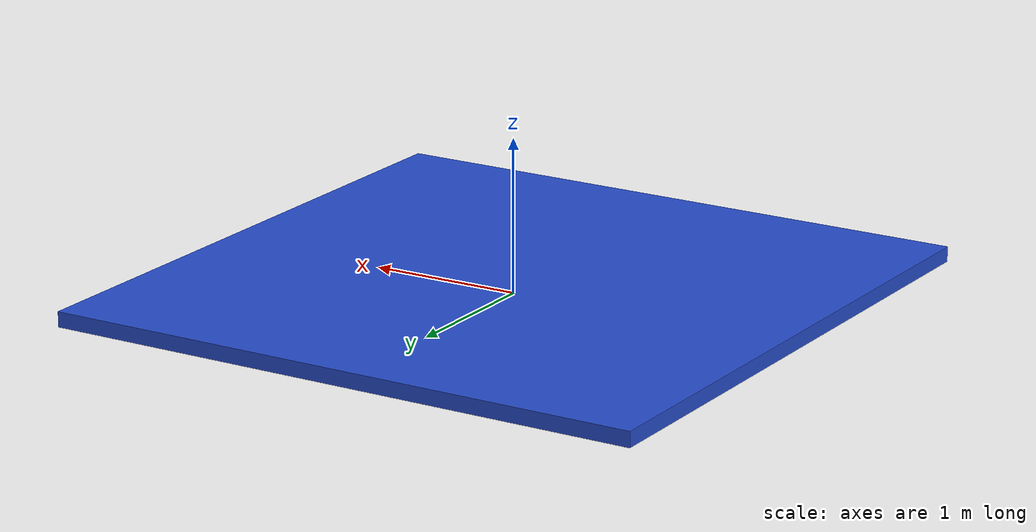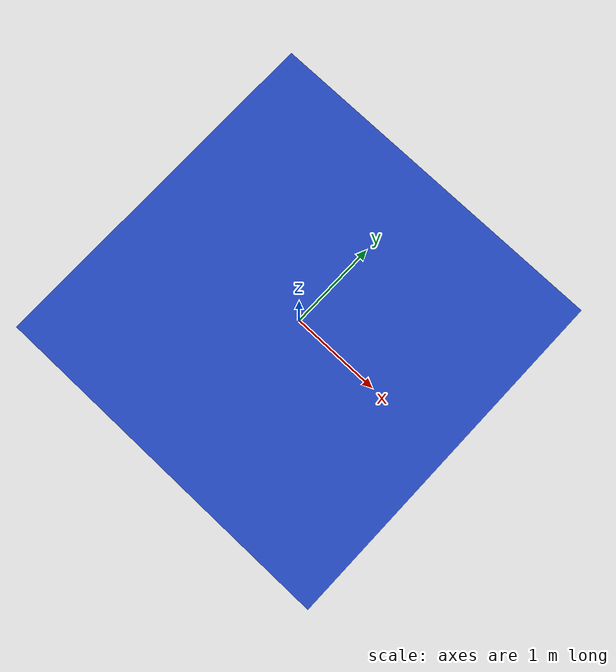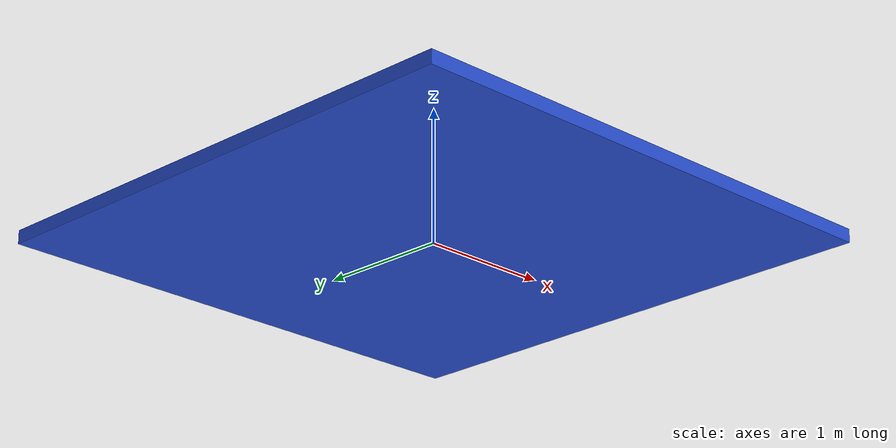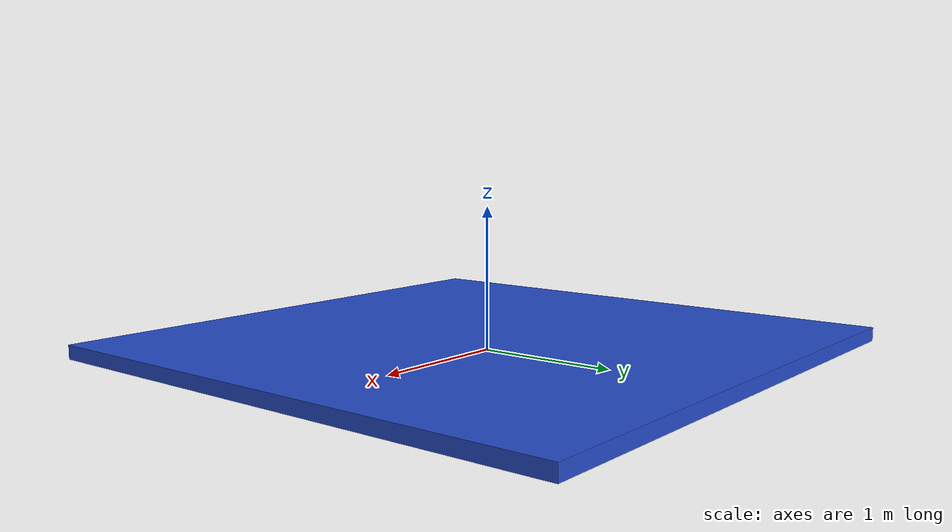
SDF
<?xml version='1.0'?>
<sdf version='1.6'>
  <model name='Slippery_Mat'>
    <link name='link_0'>
      <inertial>
        <mass>1</mass>
        <inertia>
          <ixx>1.334167</ixx>
          <ixy>0</ixy>
          <ixz>0</ixz>
          <iyy>2.666667</iyy>
          <iyz>0</iyz>
          <izz>1.334167</izz>
        </inertia>
      </inertial>
      <pose frame=''>0 0 0.05 0 -0 0</pose>
      <visual name='visual'>
        <pose frame=''>0 0 0 0 -0 0</pose>
        <geometry>
          <box>
            <size>4 4 0.1</size>
          </box>
        </geometry>
        <material>
          <lighting>1</lighting>
          <script>
            <uri>file://media/materials/scripts/gazebo.material</uri>
            <name>Gazebo/Blue</name>
          </script>
          <shader type='pixel'/>
        </material>
        <transparency>0</transparency>
        <cast_shadows>1</cast_shadows>
      </visual>
      <collision name='collision'>
        <laser_retro>0</laser_retro>
        <max_contacts>100</max_contacts>
        <pose frame=''>0 0 0 0 -0 0</pose>
        <geometry>
          <box>
            <size>4 4 0.1</size>
          </box>
        </geometry>
        <surface>
          <friction>
            <ode>
              <mu>0</mu>
              <mu2>0</mu2>
              <fdir1>0 0 0</fdir1>
              <slip1>0</slip1>
              <slip2>0</slip2>
            </ode>
            <torsional>
              <coefficient>1</coefficient>
              <patch_radius>0</patch_radius>
              <surface_radius>0</surface_radius>
              <use_patch_radius>1</use_patch_radius>
              <ode>
                <slip>0</slip>
              </ode>
            </torsional>
          </friction>
          <bounce>
            <restitution_coefficient>0</restitution_coefficient>
            <threshold>1e+06</threshold>
          </bounce>
          <contact>
            <collide_without_contact>0</collide_without_contact>
            <collide_without_contact_bitmask>1</collide_without_contact_bitmask>
            <collide_bitmask>1</collide_bitmask>
            <ode>
              <soft_cfm>0</soft_cfm>
              <soft_erp>0.2</soft_erp>
              <kp>1e+13</kp>
              <kd>1</kd>
              <max_vel>0.01</max_vel>
              <min_depth>0</min_depth>
            </ode>
            <bullet>
              <split_impulse>1</split_impulse>
              <split_impulse_penetration_threshold>-0.01</split_impulse_penetration_threshold>
              <soft_cfm>0</soft_cfm>
              <soft_erp>0.2</soft_erp>
              <kp>1e+13</kp>
              <kd>1</kd>
            </bullet>
          </contact>
        </surface>
      </collision>
    </link>
    <static>0</static>
    <allow_auto_disable>1</allow_auto_disable>
  </model>
</sdf>
